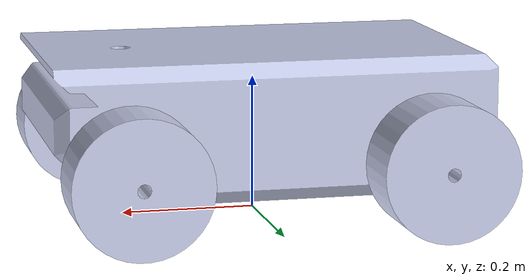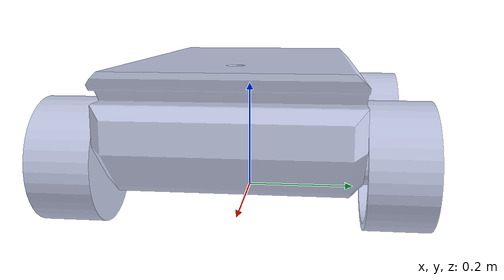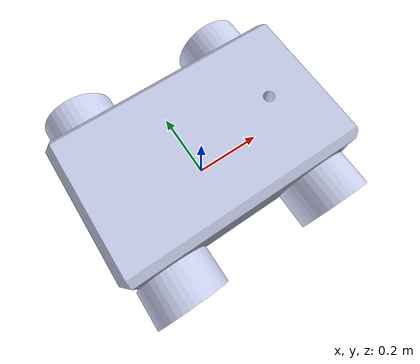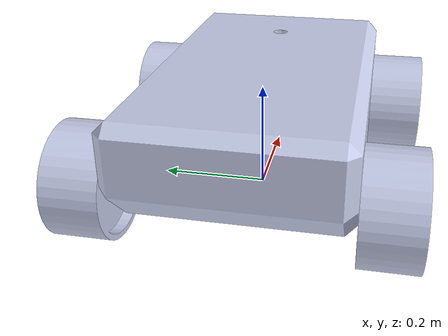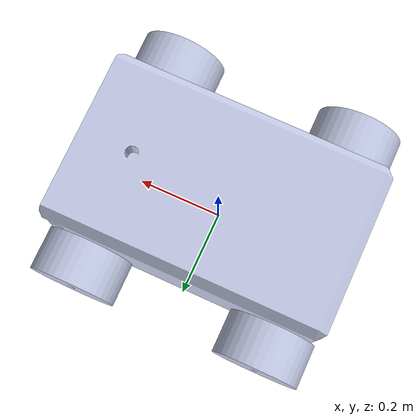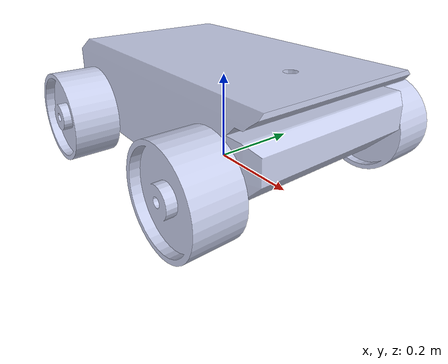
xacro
<?xml version="1.0"?>
<robot xmlns:xacro="http://www.ros.org/wiki/xacro" name="robot_base">

<!-- Include wheels essentials xacro -->
<xacro:include
  filename="$(find robot_description)/urdf/robot_essentials.xacro"/>

<!-- Include base essentials xacro -->
<xacro:include
  filename="$(find robot_description)/urdf/robot_base_essentials.xacro"/>

<!-- Include gazebo_essentials_base xacro -->
<xacro:include filename="$(find robot_description)/urdf/gazebo_essentials_base.xacro"/>

<link name="base_footprint">/</link>

<joint name="base_joint" type="fixed" >
  <parent link="base_footprint" />
  <child link="base_link" />
  <origin xyz="0.0 0.0 0.1" rpy="0.0 0.0 0.0" />
  <axis xyz="0.0 1 0.0"/>
</joint>

<link name="base_link">
  <visual>
    <origin xyz="0.0 0.0 0.0" rpy="1.5707963267949 0 3.14"/>
    <geometry>
      <mesh
        filename="package://robot_description/meshes/robot_base.stl"
        scale="1.0 1.0 1.0"/>
    </geometry>
    <material name="">
      <color rgba="0.79216 0.81961 0.93333 1.0"/>
    </material>
  </visual>
  <collision>
    <origin xyz="0.0 0.0 0.0" rpy="1.5707963267949 0.0 3.14"/>
    <geometry>
      <mesh
        filename="package://robot_description/meshes/robot_base.stl"
        scale="1.0 1.0 1.0"/>
    </geometry>
  </collision>
  <inertial>
    <origin
      xyz="0.0030946 4.78250032638821E-11 0.053305"
      rpy="0.0 0.0 0.0"/>
    <mass value="47.873"/>
    <inertia
      ixx="0.774276574699151"
      ixy="-1.03781944357671E-10"
      ixz="0.00763014265820928"
      iyy="1.64933255189991"
      iyz="1.09578155845563E-12"
      izz="2.1239326987473"/>
  </inertial>

</link>

<!-- Robot wheel links -->
<xacro:robot_wheel prefix="front_left"/>
<xacro:robot_wheel prefix="front_right"/>
<xacro:robot_wheel prefix="rear_left"/>
<xacro:robot_wheel prefix="rear_right"/>

<!-- Robot wheel joints -->
<xacro:wheel_joint prefix="front_left" origin="0.220 0.250 0"/>
<xacro:wheel_joint prefix="front_right" origin="0.220 -0.250 0"/>
<xacro:wheel_joint prefix="rear_left" origin="-0.220 0.250 0"/>
<xacro:wheel_joint prefix="rear_right" origin="-0.220 -0.250 0"/>

<!-- Wheels transmission elements -->
<xacro:base_transmission prefix="front_left"/>
<xacro:base_transmission prefix="front_right"/>
<xacro:base_transmission prefix="rear_left"/>
<xacro:base_transmission prefix="rear_right"/>

<!-- Wheel friction macro for gazebo -->
<xacro:wheel_friction prefix="front_left"/>
<xacro:wheel_friction prefix="front_right"/>
<xacro:wheel_friction prefix="rear_left"/>
<xacro:wheel_friction prefix="rear_right"/>

</robot>

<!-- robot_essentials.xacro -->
<robot xmlns:xacro="http://www.ros.org/wiki/xacro" name="robot_essentials">

  <!-- Wheel link macro -->
  <xacro:macro name="robot_wheel" params="prefix">
    <link name="${prefix}_wheel">
      <visual>
        <origin xyz="0.0 0.0 0.0" rpy="1.5707963267949 0.0 0.0"/>
        <geometry>
          <mesh
            filename="package://robot_description/meshes/wheel.stl"
            scale="1.0 1.0 1.0"/>
        </geometry>
        <material name="">
          <color rgba="0.79216 0.81961 0.93333 1.0"/>
        </material>
      </visual>
      <collision>
        <origin xyz="0.0 0.0 0.0" rpy="1.5707963267949 0.0 0.0"/>
        <geometry>
          <mesh
          filename="package://robot_description/meshes/wheel.stl"
          scale="1.0 1.0 1.0"/>
        </geometry>
      </collision>
      <inertial>
        <origin
          xyz="-4.1867E-18 0.0068085 -1.65658661799998E-18"
          rpy="0.0 0.0 0.0"/>
        <mass value="2.6578"/>
        <inertia
          ixx="0.00856502765719703"
          ixy="1.5074118157338E-19"
          ixz="-4.78150098725052E-19"
          iyy="0.013670640432096"
          iyz="-2.68136447099727E-19"
          izz="0.00856502765719703"/>
      </inertial>
    </link>
  </xacro:macro>

  <!-- Wheel joint macro -->
  <xacro:macro name="wheel_joint" params="prefix origin">
    <joint name="${prefix}_wheel_joint" type="continuous">
      <parent link="base_link"/>
      <child link="${prefix}_wheel"/>
      <axis xyz="0 1 0"/>
      <origin xyz="${origin}" rpy="0 0 0"/>
    </joint>
  </xacro:macro>

</robot>
